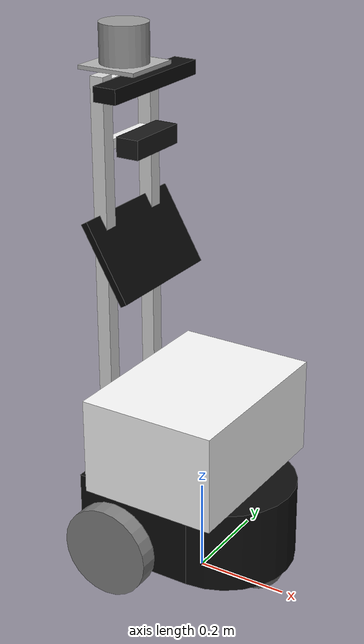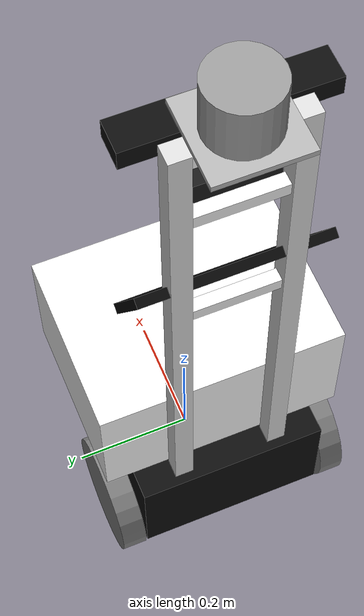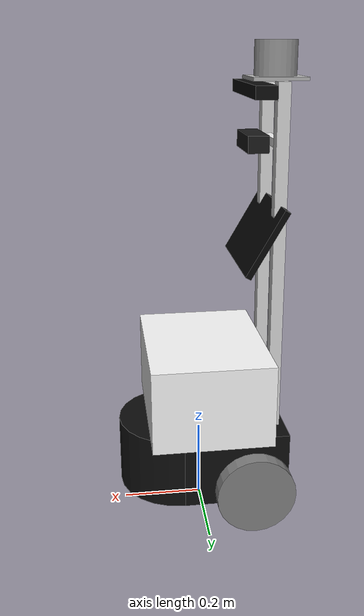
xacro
<?xml version="1.0"?>
<robot name="taoshi_bot" xmlns:xacro="http://ros.org/wiki/xacro">

  <!-- Base / Wheels params  -->
  <xacro:property name="base_width"  value="0.31"/>
  <xacro:property name="base_length" value="0.42"/>
  <xacro:property name="base_height" value="0.18"/>

  <xacro:property name="wheel_radius" value="0.10"/>
  <xacro:property name="wheel_width"  value="0.04"/>
  <xacro:property name="wheel_ygap"   value="0.025"/>
  <xacro:property name="wheel_zoff"   value="0.05"/>
  <xacro:property name="wheel_xoff"   value="0.12"/>

  <xacro:property name="caster_xoff" value="0.14"/>
  <xacro:property name="caster_radius" value="${wheel_radius + wheel_zoff - (base_height/2)}"/>

  <xacro:property name="drop_z" value="0.10"/>

  <!-- Mast / Rails params   -->
  <xacro:property name="rail_size" value="0.03"/>

  <!-- LiDAR params           -->
  <xacro:property name="lidar_radius" value="0.05"/>
  <xacro:property name="lidar_length" value="0.08"/>

  <!--  Top plate (LiDAR base)  -->
  <xacro:property name="top_plate_margin" value="0.015"/>
  <xacro:property name="top_plate_x" value="${2*lidar_radius + 2*top_plate_margin}"/>
  <xacro:property name="top_plate_y" value="${2*lidar_radius + 2*top_plate_margin}"/>
  <xacro:property name="top_plate_z" value="0.008"/>

  <!-- rail_gap_y = top_plate_y + rail_size  => span_between_rails = top_plate_y -->
  <xacro:property name="rail_gap_y_target" value="${top_plate_y + rail_size}"/>
  <xacro:property name="rail_yoff" value="${rail_gap_y_target/2}"/>
  <xacro:property name="rail_gap_y" value="${rail_gap_y_target}"/>
  <xacro:property name="span_between_rails" value="${rail_gap_y - rail_size}"/>

  <!-- rail_height -->
  <xacro:property name="rail_height" value="${0.95 - drop_z}"/>

  <xacro:property name="mast_xoff" value="-0.18"/>

  <!--  White box (front)   -->
  <xacro:property name="box_l" value="0.30"/>
  <xacro:property name="box_w" value="0.40"/>
  <xacro:property name="box_h" value="0.21"/>
  <xacro:property name="box_gap_from_rail" value="0.003"/>

  <!-- FIX 2: hộp trắng đi theo rail, đặt sát phía TRƯỚC rail -->
  <xacro:property name="box_x" value="${mast_xoff + (rail_size/2) + box_gap_from_rail + (box_l/2)}"/>

  <!-- Screen params          -->
  <xacro:property name="screen_t" value="0.015"/>
  <xacro:property name="screen_w" value="0.28"/>
  <xacro:property name="screen_h" value="0.18"/>
  <xacro:property name="screen_mount_z" value="0.58"/>

  <!-- Kinect + small cam     -->
  <xacro:property name="kinect_depth" value="0.05"/>
  <xacro:property name="kinect_len"   value="0.28"/>
  <xacro:property name="kinect_h"     value="0.03"/>
  <xacro:property name="kinect_mount_z" value="0.92"/>

  <xacro:property name="smallcam_depth" value="0.05"/>
  <xacro:property name="smallcam_len"   value="0.14"/>
  <xacro:property name="smallcam_h"     value="0.04"/>
  <xacro:property name="smallcam_mount_z" value="0.80"/>

  <xacro:property name="bar_depth" value="0.02"/>
  <xacro:property name="bar_h"     value="0.02"/>

  <!-- Inertia macros         -->
  <xacro:macro name="box_inertia" params="m lx ly lz">
    <inertial>
      <origin xyz="0 0 0" rpy="0 0 0"/>
      <mass value="${m}"/>
      <inertia
        ixx="${(m/12) * (ly*ly + lz*lz)}" ixy="0.0" ixz="0.0"
        iyy="${(m/12) * (lx*lx + lz*lz)}" iyz="0.0"
        izz="${(m/12) * (lx*lx + ly*ly)}"/>
    </inertial>
  </xacro:macro>

  <xacro:macro name="cylinder_inertia" params="m r h">
    <inertial>
      <origin xyz="0 0 0" rpy="0 0 0"/>
      <mass value="${m}"/>
      <inertia
        ixx="${(m/12) * (3*r*r + h*h)}" ixy="0" ixz="0"
        iyy="${(m/12) * (3*r*r + h*h)}" iyz="0"
        izz="${(m/2) * (r*r)}"/>
    </inertial>
  </xacro:macro>

  <xacro:macro name="sphere_inertia" params="m r">
    <inertial>
      <origin xyz="0 0 0" rpy="0 0 0"/>
      <mass value="${m}"/>
      <inertia
        ixx="${(2/5) * m * (r*r)}" ixy="0.0" ixz="0.0"
        iyy="${(2/5) * m * (r*r)}" iyz="0.0"
        izz="${(2/5) * m * (r*r)}"/>
    </inertial>
  </xacro:macro>

  <xacro:macro name="extrusion" params="name lx ly lz xyz rpy rgba mass">
    <link name="${name}">
      <visual>
        <origin xyz="0 0 0" rpy="${rpy}"/>
        <geometry><box size="${lx} ${ly} ${lz}"/></geometry>
        <material name="${name}_mat"><color rgba="${rgba}"/></material>
      </visual>
      <collision>
        <origin xyz="0 0 0" rpy="${rpy}"/>
        <geometry><box size="${lx} ${ly} ${lz}"/></geometry>
      </collision>
      <xacro:box_inertia m="${mass}" lx="${lx}" ly="${ly}" lz="${lz}"/>
    </link>

    <joint name="${name}_joint" type="fixed">
      <parent link="base_link"/>
      <child link="${name}"/>
      <origin xyz="${xyz}" rpy="${rpy}"/>
    </joint>
  </xacro:macro>

  <!-- Base Links             -->
  <link name="base_footprint"/>

  <!-- Đế robot -->
  <link name="base_link">

    <!-- Visual: thân -->
    <visual>
      <origin xyz="${-(base_width/4)} 0 0" rpy="0 0 0"/>
      <geometry>
        <box size="${base_length - (base_width/2)} ${base_width} ${base_height}"/>
      </geometry>
      <material name="Black"><color rgba="0.05 0.05 0.05 1.0"/></material>
    </visual>

    <!-- Visual: đầu bo -->
    <visual>
      <origin xyz="${(base_length/2) - (base_width/2)} 0 0" rpy="0 0 0"/>
      <geometry>
        <cylinder radius="${base_width/2}" length="${base_height}"/>
      </geometry>
      <material name="Black"><color rgba="0.05 0.05 0.05 1.0"/></material>
    </visual>

    <!-- Collision: thân -->
    <collision>
      <origin xyz="${-(base_width/4)} 0 0" rpy="0 0 0"/>
      <geometry>
        <box size="${base_length - (base_width/2)} ${base_width} ${base_height}"/>
      </geometry>
    </collision>

    <!-- Collision: đầu bo -->
    <collision>
      <origin xyz="${(base_length/2) - (base_width/2)} 0 0" rpy="0 0 0"/>
      <geometry>
        <cylinder radius="${base_width/2}" length="${base_height}"/>
      </geometry>
    </collision>

    <xacro:box_inertia m="28" lx="${base_length}" ly="${base_width}" lz="${base_height}"/>
  </link>

  <joint name="base_footprint_joint" type="fixed">
    <parent link="base_footprint"/>
    <child link="base_link"/>
    <origin xyz="0.0 0.0 ${wheel_radius+wheel_zoff}" rpy="0 0 0"/>
  </joint>

  <gazebo reference="base_link">
    <linearDamping>0.15</linearDamping>
    <angularDamping>0.15</angularDamping>
  </gazebo>

  <!-- White box (front)      -->
  <link name="white_box_link">
    <visual>
      <geometry><box size="${box_l} ${box_w} ${box_h}"/></geometry>
      <material name="white"><color rgba="0.98 0.98 0.98 1.0"/></material>
    </visual>
    <collision>
      <geometry><box size="${box_l} ${box_w} ${box_h}"/></geometry>
    </collision>
    <xacro:box_inertia m="6.0" lx="${box_l}" ly="${box_w}" lz="${box_h}"/>
  </link>

  <joint name="white_box_joint" type="fixed">
    <parent link="base_link"/>
    <child link="white_box_link"/>
    <origin xyz="${box_x} 0.0 ${(base_height/2 + box_h/2)}" rpy="0 0 0"/>
  </joint>

  <!-- Rails -->
  <xacro:extrusion name="rail_left"
    lx="${rail_size}" ly="${rail_size}" lz="${rail_height}"
    xyz="${mast_xoff} ${rail_yoff} ${(base_height/2 + rail_height/2)}"
    rpy="0 0 0" rgba="0.85 0.85 0.85 1.0" mass="1.0"/>

  <xacro:extrusion name="rail_right"
    lx="${rail_size}" ly="${rail_size}" lz="${rail_height}"
    xyz="${mast_xoff} ${-rail_yoff} ${(base_height/2 + rail_height/2)}"
    rpy="0 0 0" rgba="0.85 0.85 0.85 1.0" mass="1.0"/>

  <!-- Top plate (LiDAR base) -->
  <link name="top_plate_link">
    <visual>
      <geometry><box size="${top_plate_x} ${top_plate_y} ${top_plate_z}"/></geometry>
      <material name="plate"><color rgba="0.7 0.7 0.7 1"/></material>
    </visual>
    <collision>
      <geometry><box size="${top_plate_x} ${top_plate_y} ${top_plate_z}"/></geometry>
    </collision>
    <xacro:box_inertia m="0.4" lx="${top_plate_x}" ly="${top_plate_y}" lz="${top_plate_z}"/>
  </link>

  <joint name="top_plate_joint" type="fixed">
    <parent link="base_link"/>
    <child link="top_plate_link"/>
    <origin xyz="${mast_xoff} 0.0 ${(base_height/2 + rail_height + top_plate_z/2)}" rpy="0 0 0"/>
  </joint>

  <!-- Crossbar for Kinect    -->
  <link name="kinect_bar_link">
    <visual>
      <geometry><box size="${bar_depth} ${span_between_rails} ${bar_h}"/></geometry>
      <material name="bar"><color rgba="0.95 0.95 0.95 1"/></material>
    </visual>
    <collision>
      <geometry><box size="${bar_depth} ${span_between_rails} ${bar_h}"/></geometry>
    </collision>
    <xacro:box_inertia m="0.3" lx="${bar_depth}" ly="${span_between_rails}" lz="${bar_h}"/>
  </link>

  <joint name="kinect_bar_joint" type="fixed">
    <parent link="base_link"/>
    <child link="kinect_bar_link"/>
    <origin xyz="${mast_xoff} 0.0 ${kinect_mount_z}" rpy="0 0 0"/>
  </joint>

  <link name="kinect_link">
    <visual>
      <geometry><box size="${kinect_depth} ${kinect_len} ${kinect_h}"/></geometry>
      <material name="kinect_mat"><color rgba="0.05 0.05 0.05 1.0"/></material>
    </visual>
    <collision>
      <geometry><box size="${kinect_depth} ${kinect_len} ${kinect_h}"/></geometry>
    </collision>
    <xacro:box_inertia m="0.5" lx="${kinect_depth}" ly="${kinect_len}" lz="${kinect_h}"/>
  </link>

  <joint name="kinect_joint" type="fixed">
    <parent link="kinect_bar_link"/>
    <child link="kinect_link"/>
    <origin xyz="${(bar_depth/2 + kinect_depth/2 + 0.015)} 0.0 0.0" rpy="0 0 0"/>
  </joint>

  <link name="kinect_depth_frame"/>
  <joint name="kinect_depth_joint" type="fixed">
    <parent link="kinect_link"/>
    <child link="kinect_depth_frame"/>
    <origin xyz="0 0 0" rpy="${-pi/2} 0 ${-pi/2}"/>
  </joint>

  <!-- Crossbar for small cam -->
  <link name="smallcam_bar_link">
    <visual>
      <geometry><box size="${bar_depth} ${span_between_rails} ${bar_h}"/></geometry>
      <material name="bar2"><color rgba="0.95 0.95 0.95 1"/></material>
    </visual>
    <collision>
      <geometry><box size="${bar_depth} ${span_between_rails} ${bar_h}"/></geometry>
    </collision>
    <xacro:box_inertia m="0.25" lx="${bar_depth}" ly="${span_between_rails}" lz="${bar_h}"/>
  </link>

  <joint name="smallcam_bar_joint" type="fixed">
    <parent link="base_link"/>
    <child link="smallcam_bar_link"/>
    <origin xyz="${mast_xoff} 0.0 ${smallcam_mount_z}" rpy="0 0 0"/>
  </joint>

  <link name="smallcam_link">
    <visual>
      <geometry><box size="${smallcam_depth} ${smallcam_len} ${smallcam_h}"/></geometry>
      <material name="smallcam_mat"><color rgba="0.1 0.1 0.1 1.0"/></material>
    </visual>
    <collision>
      <geometry><box size="${smallcam_depth} ${smallcam_len} ${smallcam_h}"/></geometry>
    </collision>
    <xacro:box_inertia m="0.35" lx="${smallcam_depth}" ly="${smallcam_len}" lz="${smallcam_h}"/>
  </link>

  <joint name="smallcam_joint" type="fixed">
    <parent link="smallcam_bar_link"/>
    <child link="smallcam_link"/>
    <origin xyz="${(bar_depth/2 + smallcam_depth/2 + 0.015)} 0.0 0.0" rpy="0 0 0"/>
  </joint>

  <!-- Screen mount bar + screen -->
  <link name="screen_bar_link">
    <visual>
      <geometry><box size="${bar_depth} ${span_between_rails} ${bar_h}"/></geometry>
      <material name="bar3"><color rgba="0.95 0.95 0.95 1"/></material>
    </visual>
    <collision>
      <geometry><box size="${bar_depth} ${span_between_rails} ${bar_h}"/></geometry>
    </collision>
    <xacro:box_inertia m="0.25" lx="${bar_depth}" ly="${span_between_rails}" lz="${bar_h}"/>
  </link>

  <joint name="screen_bar_joint" type="fixed">
    <parent link="base_link"/>
    <child link="screen_bar_link"/>
    <origin xyz="${mast_xoff} 0.0 ${screen_mount_z}" rpy="0 0 0"/>
  </joint>

  <link name="screen_link">
    <visual>
      <geometry><box size="${screen_t} ${screen_w} ${screen_h}"/></geometry>
      <material name="screen_black"><color rgba="0.03 0.03 0.03 1.0"/></material>
    </visual>
    <collision>
      <geometry><box size="${screen_t} ${screen_w} ${screen_h}"/></geometry>
    </collision>
    <xacro:box_inertia m="1.0" lx="${screen_t}" ly="${screen_w}" lz="${screen_h}"/>
  </link>

  <joint name="screen_joint" type="fixed">
    <parent link="screen_bar_link"/>
    <child link="screen_link"/>
    <origin xyz="${(bar_depth/2 + screen_t/2 + 0.02)} 0.0 0.0"
            rpy="0 ${-0.523599} 0"/>
  </joint>

  <!-- LiDAR link + joint     -->
  <link name="lidar_link">
    <visual>
      <geometry><cylinder radius="${lidar_radius}" length="${lidar_length}"/></geometry>
      <material name="lidar"><color rgba="0.6 0.6 0.6 1"/></material>
    </visual>
    <collision>
      <geometry><cylinder radius="${lidar_radius}" length="${lidar_length}"/></geometry>
    </collision>
    <xacro:cylinder_inertia m="0.8" r="${lidar_radius}" h="${lidar_length}"/>
  </link>

  <joint name="lidar_joint" type="fixed">
    <parent link="top_plate_link"/>
    <child link="lidar_link"/>
    <origin xyz="0.0 0.0 ${top_plate_z/2 + lidar_length/2}" rpy="0 0 0"/>
  </joint>

  <!-- Wheels                 -->
  <xacro:macro name="wheel" params="prefix x_reflect y_reflect">
    <link name="${prefix}_link">
      <visual>
        <origin xyz="0 0 0" rpy="${pi/2} 0 0"/>
        <geometry><cylinder radius="${wheel_radius}" length="${wheel_width}"/></geometry>
        <material name="Gray"><color rgba="0.5 0.5 0.5 1.0"/></material>
      </visual>
      <collision>
        <origin xyz="0 0 0" rpy="${pi/2} 0 0"/>
        <geometry><cylinder radius="${wheel_radius}" length="${wheel_width}"/></geometry>
      </collision>
      <xacro:cylinder_inertia m="0.5" r="${wheel_radius}" h="${wheel_width}"/>
    </link>

    <joint name="${prefix}_joint" type="continuous">
      <parent link="base_link"/>
      <child link="${prefix}_link"/>
      <origin xyz="${x_reflect*wheel_xoff} ${y_reflect*(base_width/2+wheel_ygap)} ${-wheel_zoff}" rpy="0 0 0"/>
      <axis xyz="0 1 0"/>
      <dynamics damping="3.0" friction="0.2"/>
    </joint>

    <gazebo reference="${prefix}_link">
      <mu1>3.0</mu1>
      <mu2>3.0</mu2>
      <kp>400000.0</kp>
      <kd>60.0</kd>
      <slip1>0.001</slip1>
      <slip2>0.001</slip2>
      <minDepth>0.001</minDepth>
      <maxVel>0.08</maxVel>
    </gazebo>
  </xacro:macro>

  <xacro:wheel prefix="drivewhl_l" x_reflect="-1" y_reflect="1"/>
  <xacro:wheel prefix="drivewhl_r" x_reflect="-1" y_reflect="-1"/>

  <!-- Front caster           -->
  <link name="front_caster">
    <visual>
      <geometry><sphere radius="${caster_radius}"/></geometry>
      <material name="Gray2"><color rgba="0.4 0.4 0.4 1.0"/></material>
    </visual>
    <collision>
      <geometry><sphere radius="${caster_radius}"/></geometry>
    </collision>
    <xacro:sphere_inertia m="0.5" r="${caster_radius}"/>
  </link>

  <joint name="caster_joint" type="fixed">
    <parent link="base_link"/>
    <child link="front_caster"/>
    <origin xyz="${caster_xoff} 0.0 ${-(base_height/2)}" rpy="0 0 0"/>
  </joint>

  <gazebo reference="front_caster">
    <mu1>0.3</mu1>
    <mu2>0.3</mu2>
    <kp>1200000.0</kp>
    <kd>250.0</kd>
    <slip1>0.06</slip1>
    <slip2>0.06</slip2>
    <minDepth>0.002</minDepth>
    <maxVel>0.1</maxVel>
  </gazebo>

  <!-- IMU                    -->
  <link name="imu_link">
    <visual><geometry><box size="0.05 0.05 0.02"/></geometry></visual>
    <collision><geometry><box size="0.05 0.05 0.02"/></geometry></collision>
    <xacro:box_inertia m="0.05" lx="0.05" ly="0.05" lz="0.02"/>
  </link>

  <joint name="imu_joint" type="fixed">
    <parent link="base_link"/>
    <child link="imu_link"/>
    <origin xyz="0 0 0.02" rpy="0 0 0"/>
  </joint>

  <!-- Diff drive plugin      -->
<gazebo>
  <plugin name="diff_drive" filename="libgazebo_ros_diff_drive.so">
    <leftJoint>drivewhl_l_joint</leftJoint>
    <rightJoint>drivewhl_r_joint</rightJoint>

    <wheelSeparation>0.36</wheelSeparation>
    <wheelDiameter>0.20</wheelDiameter>
    <wheelTorque>25</wheelTorque>
    <wheelAcceleration>6.0</wheelAcceleration>

    <odometryFrame>odom</odometryFrame>
    <robotBaseFrame>base_footprint</robotBaseFrame>

    <publishTf>true</publishTf>
    <publishWheelTF>true</publishWheelTF>
    <publishWheelJointState>true</publishWheelJointState>

   <odometryTopic>odom</odometryTopic>
   <commandTopic>cmd_vel</commandTopic>
    <commandTimeout>0.10</commandTimeout>
  </plugin>
</gazebo>

  <!-- LiDAR 2D PLANAR -->
<gazebo reference="lidar_link">
  <sensor name="lidar2d" type="ray">
    <always_on>true</always_on>
    <visualize>false</visualize>
    <update_rate>12</update_rate>

    <ray>
      <scan>
        <horizontal>
          <samples>720</samples>
          <resolution>1</resolution>
          <min_angle>-3.14159265</min_angle>
          <max_angle> 3.14159265</max_angle>
        </horizontal>
      </scan>
      <range>
        <min>0.08</min>
        <max>6.0</max>
        <resolution>0.01</resolution>
      </range>
      <noise>
        <type>gaussian</type>
        <mean>0.0</mean>
        <stddev>0.005</stddev>
      </noise>
    </ray>

    <!-- ROS1 -->
    <plugin name="gazebo_ros_laser" filename="libgazebo_ros_laser.so">
      <topicName>/scan</topicName>
      <frameName>lidar_link</frameName>
    </plugin>
  </sensor>
</gazebo>

  <!-- LiDAR 3D: PointCloud2 -->

  <!-- Depth camera simulate on Kinect -->

</robot>
